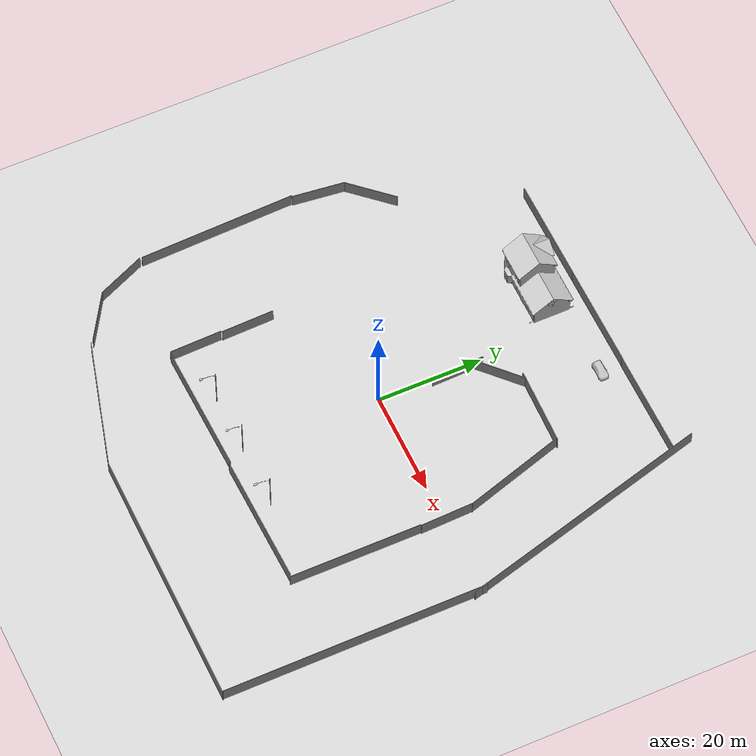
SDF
<sdf version="1.6">
 <world name="default">
  <model name="ground_plane">
   <static>1</static>
   <link name="link">
    <collision name="collision">
     <geometry><plane><normal>0 0 1</normal><size>100 100</size></plane></geometry>
     <surface>
      <contact><collide_bitmask>65535</collide_bitmask></contact>
      <friction><ode><mu>100</mu><mu2>50</mu2></ode></friction>
     </surface>
    </collision>
    <visual name="visual">
     <cast_shadows>0</cast_shadows>
     <geometry><plane><normal>0 0 1</normal><size>100 100</size></plane></geometry>
     <material>
      <script><uri>file://media/materials/scripts/gazebo.material</uri><name>Gazebo/Grey</name></script>
     </material>
    </visual>
   </link>
  </model>
  <model name="House_3">
   <link name="link">
    <inertial>
     <inertia><ixx>1</ixx><ixy>0</ixy><ixz>0</ixz><iyy>1</iyy><iyz>0</iyz><izz>1</izz></inertia>
     <mass>1</mass>
    </inertial>
    <visual name="visual">
     <geometry><mesh><uri>model://house_3/meshes/house_3.dae</uri><scale>1.5 1.5 1.5</scale></mesh></geometry>
     <material>
      <script>
       <uri>model://house_3/materials/scripts</uri>
       <uri>model://house_3/materials/textures</uri>
       <uri>model://house_1/materials/textures</uri>
       <name>House_3/Diffuse</name>
      </script>
      <shader type="normal_map_tangent_space">
       <normal_map>model://house_1/materials/textures/House_1_Normal.png</normal_map>
      </shader>
     </material>
    </visual>
    <collision name="collision">
     <geometry>
      <mesh><uri>/home/kpit/.gazebo/models/house_3/meshes/house_3.dae</uri><scale>1.5 1.5 1.5</scale></mesh>
     </geometry>
     <surface>
      <friction>
       <ode><mu>1</mu><mu2>1</mu2><fdir1>0 0 0</fdir1><slip1>0</slip1><slip2>0</slip2></ode>
       <torsional>
        <coefficient>1</coefficient>
        <patch_radius>0</patch_radius>
        <surface_radius>0</surface_radius>
        <use_patch_radius>1</use_patch_radius>
        <ode><slip>0</slip></ode>
       </torsional>
      </friction>
      <bounce><restitution_coefficient>0</restitution_coefficient><threshold>1e+06</threshold></bounce>
      <contact>
       <collide_without_contact>0</collide_without_contact>
       <collide_without_contact_bitmask>1</collide_without_contact_bitmask>
       <collide_bitmask>1</collide_bitmask>
       <ode>
        <soft_cfm>0</soft_cfm>
        <soft_erp>0.2</soft_erp>
        <kp>1e+13</kp>
        <kd>1</kd>
        <max_vel>0.01</max_vel>
        <min_depth>0</min_depth>
       </ode>
       <bullet>
        <split_impulse>1</split_impulse>
        <split_impulse_penetration_threshold>-0.01</split_impulse_penetration_threshold>
        <soft_cfm>0</soft_cfm>
        <soft_erp>0.2</soft_erp>
        <kp>1e+13</kp>
        <kd>1</kd>
       </bullet>
      </contact>
     </surface>
    </collision>
   </link>
   <link name="link_0">
    <inertial>
     <mass>1</mass>
     <inertia>
      <ixx>0.166667</ixx>
      <ixy>0</ixy>
      <ixz>0</ixz>
      <iyy>0.166667</iyy>
      <iyz>0</iyz>
      <izz>0.166667</izz>
     </inertia>
    </inertial>
    <pose>27.4713 -84.731 1.24847 0 -0 0</pose>
    <visual name="visual">
     <geometry><box><size>50 0.1 3</size></box></geometry>
     <material>
      <lighting>1</lighting>
      <script><uri>file://media/materials/scripts/gazebo.material</uri><name>Gazebo/Grey</name></script>
      <shader type="vertex"><normal_map>__default__</normal_map></shader>
      <ambient>0.3 0.3 0.3 1</ambient>
      <diffuse>0.7 0.7 0.7 1</diffuse>
      <specular>0.01 0.01 0.01 1</specular>
      <emissive>0 0 0 1</emissive>
     </material>
    </visual>
    <collision name="collision">
     <geometry><box><size>50 0.1 3</size></box></geometry>
     <surface>
      <friction>
       <ode><mu>1</mu><mu2>1</mu2><fdir1>0 0 0</fdir1><slip1>0</slip1><slip2>0</slip2></ode>
       <torsional>
        <coefficient>1</coefficient>
        <patch_radius>0</patch_radius>
        <surface_radius>0</surface_radius>
        <use_patch_radius>1</use_patch_radius>
        <ode><slip>0</slip></ode>
       </torsional>
      </friction>
      <bounce><restitution_coefficient>0</restitution_coefficient><threshold>1e+06</threshold></bounce>
      <contact>
       <collide_without_contact>0</collide_without_contact>
       <collide_without_contact_bitmask>1</collide_without_contact_bitmask>
       <collide_bitmask>1</collide_bitmask>
       <ode>
        <soft_cfm>0</soft_cfm>
        <soft_erp>0.2</soft_erp>
        <kp>1e+13</kp>
        <kd>1</kd>
        <max_vel>0.01</max_vel>
        <min_depth>0</min_depth>
       </ode>
       <bullet>
        <split_impulse>1</split_impulse>
        <split_impulse_penetration_threshold>-0.01</split_impulse_penetration_threshold>
        <soft_cfm>0</soft_cfm>
        <soft_erp>0.2</soft_erp>
        <kp>1e+13</kp>
        <kd>1</kd>
       </bullet>
      </contact>
     </surface>
    </collision>
   </link>
   <link name="link_0_clone">
    <inertial>
     <mass>1</mass>
     <inertia>
      <ixx>0.166667</ixx>
      <ixy>0</ixy>
      <ixz>0</ixz>
      <iyy>0.166667</iyy>
      <iyz>0</iyz>
      <izz>0.166667</izz>
     </inertia>
    </inertial>
    <pose>52.241 -59.7234 1.24847 0 -0 1.57244</pose>
    <visual name="visual">
     <geometry><box><size>50 0.1 3</size></box></geometry>
     <material>
      <lighting>1</lighting>
      <script><uri>file://media/materials/scripts/gazebo.material</uri><name>Gazebo/Grey</name></script>
      <shader type="vertex"><normal_map>__default__</normal_map></shader>
      <ambient>0.3 0.3 0.3 1</ambient>
      <diffuse>0.7 0.7 0.7 1</diffuse>
      <specular>0.01 0.01 0.01 1</specular>
      <emissive>0 0 0 1</emissive>
     </material>
    </visual>
    <collision name="collision">
     <geometry><box><size>50 0.1 3</size></box></geometry>
     <surface>
      <friction>
       <ode><mu>1</mu><mu2>1</mu2><fdir1>0 0 0</fdir1><slip1>0</slip1><slip2>0</slip2></ode>
       <torsional>
        <coefficient>1</coefficient>
        <patch_radius>0</patch_radius>
        <surface_radius>0</surface_radius>
        <use_patch_radius>1</use_patch_radius>
        <ode><slip>0</slip></ode>
       </torsional>
      </friction>
      <bounce><restitution_coefficient>0</restitution_coefficient><threshold>1e+06</threshold></bounce>
      <contact>
       <collide_without_contact>0</collide_without_contact>
       <collide_without_contact_bitmask>1</collide_without_contact_bitmask>
       <collide_bitmask>1</collide_bitmask>
       <ode>
        <soft_cfm>0</soft_cfm>
        <soft_erp>0.2</soft_erp>
        <kp>1e+13</kp>
        <kd>1</kd>
        <max_vel>0.01</max_vel>
        <min_depth>0</min_depth>
       </ode>
       <bullet>
        <split_impulse>1</split_impulse>
        <split_impulse_penetration_threshold>-0.01</split_impulse_penetration_threshold>
        <soft_cfm>0</soft_cfm>
        <soft_erp>0.2</soft_erp>
        <kp>1e+13</kp>
        <kd>1</kd>
       </bullet>
      </contact>
     </surface>
    </collision>
   </link>
   <link name="link_0_clone_clone">
    <inertial>
     <mass>1</mass>
     <inertia>
      <ixx>0.166667</ixx>
      <ixy>0</ixy>
      <ixz>0</ixz>
      <iyy>0.166667</iyy>
      <iyz>0</iyz>
      <izz>0.166667</izz>
     </inertia>
    </inertial>
    <pose>46.1337 -13.1709 1.24847 0 -0 1.83448</pose>
    <visual name="visual">
     <geometry><box><size>50 0.1 3</size></box></geometry>
     <material>
      <lighting>1</lighting>
      <script><uri>file://media/materials/scripts/gazebo.material</uri><name>Gazebo/Grey</name></script>
      <shader type="vertex"><normal_map>__default__</normal_map></shader>
      <ambient>0.3 0.3 0.3 1</ambient>
      <diffuse>0.7 0.7 0.7 1</diffuse>
      <specular>0.01 0.01 0.01 1</specular>
      <emissive>0 0 0 1</emissive>
     </material>
    </visual>
    <collision name="collision">
     <geometry><box><size>50 0.1 3</size></box></geometry>
     <surface>
      <friction>
       <ode><mu>1</mu><mu2>1</mu2><fdir1>0 0 0</fdir1><slip1>0</slip1><slip2>0</slip2></ode>
       <torsional>
        <coefficient>1</coefficient>
        <patch_radius>0</patch_radius>
        <surface_radius>0</surface_radius>
        <use_patch_radius>1</use_patch_radius>
        <ode><slip>0</slip></ode>
       </torsional>
      </friction>
      <bounce><restitution_coefficient>0</restitution_coefficient><threshold>1e+06</threshold></bounce>
      <contact>
       <collide_without_contact>0</collide_without_contact>
       <collide_without_contact_bitmask>1</collide_without_contact_bitmask>
       <collide_bitmask>1</collide_bitmask>
       <ode>
        <soft_cfm>0</soft_cfm>
        <soft_erp>0.2</soft_erp>
        <kp>1e+13</kp>
        <kd>1</kd>
        <max_vel>0.01</max_vel>
        <min_depth>0</min_depth>
       </ode>
       <bullet>
        <split_impulse>1</split_impulse>
        <split_impulse_penetration_threshold>-0.01</split_impulse_penetration_threshold>
        <soft_cfm>0</soft_cfm>
        <soft_erp>0.2</soft_erp>
        <kp>1e+13</kp>
        <kd>1</kd>
       </bullet>
      </contact>
     </surface>
    </collision>
   </link>
   <link name="link_0_clone_clone_clone">
    <inertial>
     <mass>1</mass>
     <inertia>
      <ixx>0.166667</ixx>
      <ixy>0</ixy>
      <ixz>0</ixz>
      <iyy>0.166667</iyy>
      <iyz>0</iyz>
      <izz>0.166667</izz>
     </inertia>
    </inertial>
    <pose>33.5876 -20.7243 1.24847 0 -0 1.87008</pose>
    <visual name="visual">
     <geometry><box><size>20 0.1 3</size></box></geometry>
     <material>
      <lighting>1</lighting>
      <script><uri>file://media/materials/scripts/gazebo.material</uri><name>Gazebo/Grey</name></script>
      <shader type="vertex"><normal_map>__default__</normal_map></shader>
      <ambient>0.3 0.3 0.3 1</ambient>
      <diffuse>0.7 0.7 0.7 1</diffuse>
      <specular>0.01 0.01 0.01 1</specular>
      <emissive>0 0 0 1</emissive>
     </material>
    </visual>
    <collision name="collision">
     <geometry><box><size>20 0.1 3</size></box></geometry>
     <surface>
      <friction>
       <ode><mu>1</mu><mu2>1</mu2><fdir1>0 0 0</fdir1><slip1>0</slip1><slip2>0</slip2></ode>
       <torsional>
        <coefficient>1</coefficient>
        <patch_radius>0</patch_radius>
        <surface_radius>0</surface_radius>
        <use_patch_radius>1</use_patch_radius>
        <ode><slip>0</slip></ode>
       </torsional>
      </friction>
      <bounce><restitution_coefficient>0</restitution_coefficient><threshold>1e+06</threshold></bounce>
      <contact>
       <collide_without_contact>0</collide_without_contact>
       <collide_without_contact_bitmask>1</collide_without_contact_bitmask>
       <collide_bitmask>1</collide_bitmask>
       <ode>
        <soft_cfm>0</soft_cfm>
        <soft_erp>0.2</soft_erp>
        <kp>1e+13</kp>
        <kd>1</kd>
        <max_vel>0.01</max_vel>
        <min_depth>0</min_depth>
       </ode>
       <bullet>
        <split_impulse>1</split_impulse>
        <split_impulse_penetration_threshold>-0.01</split_impulse_penetration_threshold>
        <soft_cfm>0</soft_cfm>
        <soft_erp>0.2</soft_erp>
        <kp>1e+13</kp>
        <kd>1</kd>
       </bullet>
      </contact>
     </surface>
    </collision>
   </link>
   <link name="link_0_clone_clone_clone_clone">
    <inertial>
     <mass>1</mass>
     <inertia>
      <ixx>0.166667</ixx>
      <ixy>0</ixy>
      <ixz>0</ixz>
      <iyy>0.166667</iyy>
      <iyz>0</iyz>
      <izz>0.166667</izz>
     </inertia>
    </inertial>
    <pose>36.6159 -52.6479 1.24847 0 -0 1.57014</pose>
    <visual name="visual">
     <geometry><box><size>25 0.1 3</size></box></geometry>
     <material>
      <lighting>1</lighting>
      <script><uri>file://media/materials/scripts/gazebo.material</uri><name>Gazebo/Grey</name></script>
      <shader type="vertex"><normal_map>__default__</normal_map></shader>
      <ambient>0.3 0.3 0.3 1</ambient>
      <diffuse>0.7 0.7 0.7 1</diffuse>
      <specular>0.01 0.01 0.01 1</specular>
      <emissive>0 0 0 1</emissive>
     </material>
    </visual>
    <collision name="collision">
     <geometry><box><size>25 0.1 3</size></box></geometry>
     <surface>
      <friction>
       <ode><mu>1</mu><mu2>1</mu2><fdir1>0 0 0</fdir1><slip1>0</slip1><slip2>0</slip2></ode>
       <torsional>
        <coefficient>1</coefficient>
        <patch_radius>0</patch_radius>
        <surface_radius>0</surface_radius>
        <use_patch_radius>1</use_patch_radius>
        <ode><slip>0</slip></ode>
       </torsional>
      </friction>
      <bounce><restitution_coefficient>0</restitution_coefficient><threshold>1e+06</threshold></bounce>
      <contact>
       <collide_without_contact>0</collide_without_contact>
       <collide_without_contact_bitmask>1</collide_without_contact_bitmask>
       <collide_bitmask>1</collide_bitmask>
       <ode>
        <soft_cfm>0</soft_cfm>
        <soft_erp>0.2</soft_erp>
        <kp>1e+13</kp>
        <kd>1</kd>
        <max_vel>0.01</max_vel>
        <min_depth>0</min_depth>
       </ode>
       <bullet>
        <split_impulse>1</split_impulse>
        <split_impulse_penetration_threshold>-0.01</split_impulse_penetration_threshold>
        <soft_cfm>0</soft_cfm>
        <soft_erp>0.2</soft_erp>
        <kp>1e+13</kp>
        <kd>1</kd>
       </bullet>
      </contact>
     </surface>
    </collision>
   </link>
   <link name="link_0_clone_clone_clone_clone_0_clone">
    <inertial>
     <mass>1</mass>
     <inertia>
      <ixx>0.166667</ixx>
      <ixy>0</ixy>
      <ixz>0</ixz>
      <iyy>0.166667</iyy>
      <iyz>0</iyz>
      <izz>0.166667</izz>
     </inertia>
    </inertial>
    <pose>30.5119 6.6857 1.24847 -0 -0 -3.13692</pose>
    <visual name="visual">
     <geometry><box><size>20 0.1 3</size></box></geometry>
     <material>
      <lighting>1</lighting>
      <script><uri>file://media/materials/scripts/gazebo.material</uri><name>Gazebo/Grey</name></script>
      <shader type="vertex"><normal_map>__default__</normal_map></shader>
      <ambient>0.3 0.3 0.3 1</ambient>
      <diffuse>0.7 0.7 0.7 1</diffuse>
      <specular>0.01 0.01 0.01 1</specular>
      <emissive>0 0 0 1</emissive>
     </material>
    </visual>
    <collision name="collision">
     <geometry><box><size>20 0.1 3</size></box></geometry>
     <surface>
      <friction>
       <ode><mu>1</mu><mu2>1</mu2><fdir1>0 0 0</fdir1><slip1>0</slip1><slip2>0</slip2></ode>
       <torsional>
        <coefficient>1</coefficient>
        <patch_radius>0</patch_radius>
        <surface_radius>0</surface_radius>
        <use_patch_radius>1</use_patch_radius>
        <ode><slip>0</slip></ode>
       </torsional>
      </friction>
      <bounce><restitution_coefficient>0</restitution_coefficient><threshold>1e+06</threshold></bounce>
      <contact>
       <collide_without_contact>0</collide_without_contact>
       <collide_without_contact_bitmask>1</collide_without_contact_bitmask>
       <collide_bitmask>1</collide_bitmask>
       <ode>
        <soft_cfm>0</soft_cfm>
        <soft_erp>0.2</soft_erp>
        <kp>1e+13</kp>
        <kd>1</kd>
        <max_vel>0.01</max_vel>
        <min_depth>0</min_depth>
       </ode>
       <bullet>
        <split_impulse>1</split_impulse>
        <split_impulse_penetration_threshold>-0.01</split_impulse_penetration_threshold>
        <soft_cfm>0</soft_cfm>
        <soft_erp>0.2</soft_erp>
        <kp>1e+13</kp>
        <kd>1</kd>
       </bullet>
      </contact>
     </surface>
    </collision>
   </link>
   <link name="link_0_clone_clone_clone_clone_0_clone_0">
    <inertial>
     <mass>1</mass>
     <inertia>
      <ixx>0.166667</ixx>
      <ixy>0</ixy>
      <ixz>0</ixz>
      <iyy>0.166667</iyy>
      <iyz>0</iyz>
      <izz>0.166667</izz>
     </inertia>
    </inertial>
    <pose>10.5116 6.64563 1.24847 -0 -0 -3.13692</pose>
    <visual name="visual">
     <geometry><box><size>20 0.1 3</size></box></geometry>
     <material>
      <lighting>1</lighting>
      <script><uri>file://media/materials/scripts/gazebo.material</uri><name>Gazebo/Grey</name></script>
      <shader type="vertex"><normal_map>__default__</normal_map></shader>
      <ambient>0.3 0.3 0.3 1</ambient>
      <diffuse>0.7 0.7 0.7 1</diffuse>
      <specular>0.01 0.01 0.01 1</specular>
      <emissive>0 0 0 1</emissive>
     </material>
    </visual>
    <collision name="collision">
     <geometry><box><size>20 0.1 3</size></box></geometry>
     <surface>
      <friction>
       <ode><mu>1</mu><mu2>1</mu2><fdir1>0 0 0</fdir1><slip1>0</slip1><slip2>0</slip2></ode>
       <torsional>
        <coefficient>1</coefficient>
        <patch_radius>0</patch_radius>
        <surface_radius>0</surface_radius>
        <use_patch_radius>1</use_patch_radius>
        <ode><slip>0</slip></ode>
       </torsional>
      </friction>
      <bounce><restitution_coefficient>0</restitution_coefficient><threshold>1e+06</threshold></bounce>
      <contact>
       <collide_without_contact>0</collide_without_contact>
       <collide_without_contact_bitmask>1</collide_without_contact_bitmask>
       <collide_bitmask>1</collide_bitmask>
       <ode>
        <soft_cfm>0</soft_cfm>
        <soft_erp>0.2</soft_erp>
        <kp>1e+13</kp>
        <kd>1</kd>
        <max_vel>0.01</max_vel>
        <min_depth>0</min_depth>
       </ode>
       <bullet>
        <split_impulse>1</split_impulse>
        <split_impulse_penetration_threshold>-0.01</split_impulse_penetration_threshold>
        <soft_cfm>0</soft_cfm>
        <soft_erp>0.2</soft_erp>
        <kp>1e+13</kp>
        <kd>1</kd>
       </bullet>
      </contact>
     </surface>
    </collision>
   </link>
   <link name="link_0_clone_clone_clone_clone_0_clone_1">
    <inertial>
     <mass>1</mass>
     <inertia>
      <ixx>0.166667</ixx>
      <ixy>0</ixy>
      <ixz>0</ixz>
      <iyy>0.166667</iyy>
      <iyz>0</iyz>
      <izz>0.166667</izz>
     </inertia>
    </inertial>
    <pose>-9.52792 6.55994 1.24847 -0 -0 -3.13692</pose>
    <visual name="visual">
     <geometry><box><size>20 0.1 3</size></box></geometry>
     <material>
      <lighting>1</lighting>
      <script><uri>file://media/materials/scripts/gazebo.material</uri><name>Gazebo/Grey</name></script>
      <shader type="vertex"><normal_map>__default__</normal_map></shader>
      <ambient>0.3 0.3 0.3 1</ambient>
      <diffuse>0.7 0.7 0.7 1</diffuse>
      <specular>0.01 0.01 0.01 1</specular>
      <emissive>0 0 0 1</emissive>
     </material>
    </visual>
    <collision name="collision">
     <geometry><box><size>20 0.1 3</size></box></geometry>
     <surface>
      <friction>
       <ode><mu>1</mu><mu2>1</mu2><fdir1>0 0 0</fdir1><slip1>0</slip1><slip2>0</slip2></ode>
       <torsional>
        <coefficient>1</coefficient>
        <patch_radius>0</patch_radius>
        <surface_radius>0</surface_radius>
        <use_patch_radius>1</use_patch_radius>
        <ode><slip>0</slip></ode>
       </torsional>
      </friction>
      <bounce><restitution_coefficient>0</restitution_coefficient><threshold>1e+06</threshold></bounce>
      <contact>
       <collide_without_contact>0</collide_without_contact>
       <collide_without_contact_bitmask>1</collide_without_contact_bitmask>
       <collide_bitmask>1</collide_bitmask>
       <ode>
        <soft_cfm>0</soft_cfm>
        <soft_erp>0.2</soft_erp>
        <kp>1e+13</kp>
        <kd>1</kd>
        <max_vel>0.01</max_vel>
        <min_depth>0</min_depth>
       </ode>
       <bullet>
        <split_impulse>1</split_impulse>
        <split_impulse_penetration_threshold>-0.01</split_impulse_penetration_threshold>
        <soft_cfm>0</soft_cfm>
        <soft_erp>0.2</soft_erp>
        <kp>1e+13</kp>
        <kd>1</kd>
       </bullet>
      </contact>
     </surface>
    </collision>
   </link>
   <link name="link_0_clone_clone_clone_clone_0_clone_1_clone">
    <inertial>
     <mass>1</mass>
     <inertia>
      <ixx>0.166667</ixx>
      <ixy>0</ixy>
      <ixz>0</ixz>
      <iyy>0.166667</iyy>
      <iyz>0</iyz>
      <izz>0.166667</izz>
     </inertia>
    </inertial>
    <pose>-30.8832 -18.8526 1.24847 -0 -0 -2.31387</pose>
    <visual name="visual">
     <geometry><box><size>10 0.1 3</size></box></geometry>
     <material>
      <lighting>1</lighting>
      <script><uri>file://media/materials/scripts/gazebo.material</uri><name>Gazebo/Grey</name></script>
      <shader type="vertex"><normal_map>__default__</normal_map></shader>
      <ambient>0.3 0.3 0.3 1</ambient>
      <diffuse>0.7 0.7 0.7 1</diffuse>
      <specular>0.01 0.01 0.01 1</specular>
      <emissive>0 0 0 1</emissive>
     </material>
    </visual>
    <collision name="collision">
     <geometry><box><size>10 0.1 3</size></box></geometry>
     <surface>
      <friction>
       <ode><mu>1</mu><mu2>1</mu2><fdir1>0 0 0</fdir1><slip1>0</slip1><slip2>0</slip2></ode>
       <torsional>
        <coefficient>1</coefficient>
        <patch_radius>0</patch_radius>
        <surface_radius>0</surface_radius>
        <use_patch_radius>1</use_patch_radius>
        <ode><slip>0</slip></ode>
       </torsional>
      </friction>
      <bounce><restitution_coefficient>0</restitution_coefficient><threshold>1e+06</threshold></bounce>
      <contact>
       <collide_without_contact>0</collide_without_contact>
       <collide_without_contact_bitmask>1</collide_without_contact_bitmask>
       <collide_bitmask>1</collide_bitmask>
       <ode>
        <soft_cfm>0</soft_cfm>
        <soft_erp>0.2</soft_erp>
        <kp>1e+13</kp>
        <kd>1</kd>
        <max_vel>0.01</max_vel>
        <min_depth>0</min_depth>
       </ode>
       <bullet>
        <split_impulse>1</split_impulse>
        <split_impulse_penetration_threshold>-0.01</split_impulse_penetration_threshold>
        <soft_cfm>0</soft_cfm>
        <soft_erp>0.2</soft_erp>
        <kp>1e+13</kp>
        <kd>1</kd>
       </bullet>
      </contact>
     </surface>
    </collision>
   </link>
   <link name="link_0_clone_clone_clone_clone_0_clone_1_clone_clone">
    <inertial>
     <mass>1</mass>
     <inertia>
      <ixx>0.166667</ixx>
      <ixy>0</ixy>
      <ixz>0</ixz>
      <iyy>0.166667</iyy>
      <iyz>0</iyz>
      <izz>0.166667</izz>
     </inertia>
    </inertial>
    <pose>-34.9276 -27.509 1.24847 0 -0 -1.68597</pose>
    <visual name="visual">
     <geometry><box><size>10 0.1 3</size></box></geometry>
     <material>
      <lighting>1</lighting>
      <script><uri>file://media/materials/scripts/gazebo.material</uri><name>Gazebo/Grey</name></script>
      <shader type="vertex"><normal_map>__default__</normal_map></shader>
      <ambient>0.3 0.3 0.3 1</ambient>
      <diffuse>0.7 0.7 0.7 1</diffuse>
      <specular>0.01 0.01 0.01 1</specular>
      <emissive>0 0 0 1</emissive>
     </material>
    </visual>
    <collision name="collision">
     <geometry><box><size>10 0.1 3</size></box></geometry>
     <surface>
      <friction>
       <ode><mu>1</mu><mu2>1</mu2><fdir1>0 0 0</fdir1><slip1>0</slip1><slip2>0</slip2></ode>
       <torsional>
        <coefficient>1</coefficient>
        <patch_radius>0</patch_radius>
        <surface_radius>0</surface_radius>
        <use_patch_radius>1</use_patch_radius>
        <ode><slip>0</slip></ode>
       </torsional>
      </friction>
      <bounce><restitution_coefficient>0</restitution_coefficient><threshold>1e+06</threshold></bounce>
      <contact>
       <collide_without_contact>0</collide_without_contact>
       <collide_without_contact_bitmask>1</collide_without_contact_bitmask>
       <collide_bitmask>1</collide_bitmask>
       <ode>
        <soft_cfm>0</soft_cfm>
        <soft_erp>0.2</soft_erp>
        <kp>1e+13</kp>
        <kd>1</kd>
        <max_vel>0.01</max_vel>
        <min_depth>0</min_depth>
       </ode>
       <bullet>
        <split_impulse>1</split_impulse>
        <split_impulse_penetration_threshold>-0.01</split_impulse_penetration_threshold>
        <soft_cfm>0</soft_cfm>
        <soft_erp>0.2</soft_erp>
        <kp>1e+13</kp>
        <kd>1</kd>
       </bullet>
      </contact>
     </surface>
    </collision>
   </link>
   <link name="link_0_clone_clone_clone_clone_0_clone_1_clone_clone_clone">
    <inertial>
     <mass>1</mass>
     <inertia>
      <ixx>0.166667</ixx>
      <ixy>0</ixy>
      <ixz>0</ixz>
      <iyy>0.166667</iyy>
      <iyz>0</iyz>
      <izz>0.166667</izz>
     </inertia>
    </inertial>
    <pose>-35.2166 -47.4695 1.24847 0 0 -1.53676</pose>
    <visual name="visual">
     <geometry><box><size>30 0.1 3</size></box></geometry>
     <material>
      <lighting>1</lighting>
      <script><uri>file://media/materials/scripts/gazebo.material</uri><name>Gazebo/Grey</name></script>
      <shader type="vertex"><normal_map>__default__</normal_map></shader>
      <ambient>0.3 0.3 0.3 1</ambient>
      <diffuse>0.7 0.7 0.7 1</diffuse>
      <specular>0.01 0.01 0.01 1</specular>
      <emissive>0 0 0 1</emissive>
     </material>
    </visual>
    <collision name="collision">
     <geometry><box><size>30 0.1 3</size></box></geometry>
     <surface>
      <friction>
       <ode><mu>1</mu><mu2>1</mu2><fdir1>0 0 0</fdir1><slip1>0</slip1><slip2>0</slip2></ode>
       <torsional>
        <coefficient>1</coefficient>
        <patch_radius>0</patch_radius>
        <surface_radius>0</surface_radius>
        <use_patch_radius>1</use_patch_radius>
        <ode><slip>0</slip></ode>
       </torsional>
      </friction>
      <bounce><restitution_coefficient>0</restitution_coefficient><threshold>1e+06</threshold></bounce>
      <contact>
       <collide_without_contact>0</collide_without_contact>
       <collide_without_contact_bitmask>1</collide_without_contact_bitmask>
       <collide_bitmask>1</collide_bitmask>
       <ode>
        <soft_cfm>0</soft_cfm>
        <soft_erp>0.2</soft_erp>
        <kp>1e+13</kp>
        <kd>1</kd>
        <max_vel>0.01</max_vel>
        <min_depth>0</min_depth>
       </ode>
       <bullet>
        <split_impulse>1</split_impulse>
        <split_impulse_penetration_threshold>-0.01</split_impulse_penetration_threshold>
        <soft_cfm>0</soft_cfm>
        <soft_erp>0.2</soft_erp>
        <kp>1e+13</kp>
        <kd>1</kd>
       </bullet>
      </contact>
     </surface>
    </collision>
   </link>
   <link name="link_0_clone_clone_clone_clone_0_clone_1_clone_clone_clone_0">
    <inertial>
     <mass>1</mass>
     <inertia>
      <ixx>0.166667</ixx>
      <ixy>0</ixy>
      <ixz>0</ixz>
      <iyy>0.166667</iyy>
      <iyz>0</iyz>
      <izz>0.166667</izz>
     </inertia>
    </inertial>
    <pose>-32.7782 -67.3476 1.24847 0 -0 -1.15434</pose>
    <visual name="visual">
     <geometry><box><size>10 0.1 3</size></box></geometry>
     <material>
      <lighting>1</lighting>
      <script><uri>file://media/materials/scripts/gazebo.material</uri><name>Gazebo/Grey</name></script>
      <shader type="vertex"><normal_map>__default__</normal_map></shader>
      <ambient>0.3 0.3 0.3 1</ambient>
      <diffuse>0.7 0.7 0.7 1</diffuse>
      <specular>0.01 0.01 0.01 1</specular>
      <emissive>0 0 0 1</emissive>
     </material>
    </visual>
    <collision name="collision">
     <geometry><box><size>10 0.1 3</size></box></geometry>
     <surface>
      <friction>
       <ode><mu>1</mu><mu2>1</mu2><fdir1>0 0 0</fdir1><slip1>0</slip1><slip2>0</slip2></ode>
       <torsional>
        <coefficient>1</coefficient>
        <patch_radius>0</patch_radius>
        <surface_radius>0</surface_radius>
        <use_patch_radius>1</use_patch_radius>
        <ode><slip>0</slip></ode>
       </torsional>
      </friction>
      <bounce><restitution_coefficient>0</restitution_coefficient><threshold>1e+06</threshold></bounce>
      <contact>
       <collide_without_contact>0</collide_without_contact>
       <collide_without_contact_bitmask>1</collide_without_contact_bitmask>
       <collide_bitmask>1</collide_bitmask>
       <ode>
        <soft_cfm>0</soft_cfm>
        <soft_erp>0.2</soft_erp>
        <kp>1e+13</kp>
        <kd>1</kd>
        <max_vel>0.01</max_vel>
        <min_depth>0</min_depth>
       </ode>
       <bullet>
        <split_impulse>1</split_impulse>
        <split_impulse_penetration_threshold>-0.01</split_impulse_penetration_threshold>
        <soft_cfm>0</soft_cfm>
        <soft_erp>0.2</soft_erp>
        <kp>1e+13</kp>
        <kd>1</kd>
       </bullet>
      </contact>
     </surface>
    </collision>
   </link>
   <link name="link_0_clone_clone_clone_clone_0_clone_1_clone_clone_clone_0_clone">
    <inertial>
     <mass>1</mass>
     <inertia>
      <ixx>0.166667</ixx>
      <ixy>0</ixy>
      <ixz>0</ixz>
      <iyy>0.166667</iyy>
      <iyz>0</iyz>
      <izz>0.166667</izz>
     </inertia>
    </inertial>
    <pose>-26.5795 -74.5086 1.24847 0 0 -0.56512</pose>
    <visual name="visual">
     <geometry><box><size>10 0.1 3</size></box></geometry>
     <material>
      <lighting>1</lighting>
      <script><uri>file://media/materials/scripts/gazebo.material</uri><name>Gazebo/Grey</name></script>
      <shader type="vertex"><normal_map>__default__</normal_map></shader>
      <ambient>0.3 0.3 0.3 1</ambient>
      <diffuse>0.7 0.7 0.7 1</diffuse>
      <specular>0.01 0.01 0.01 1</specular>
      <emissive>0 0 0 1</emissive>
     </material>
    </visual>
    <collision name="collision">
     <geometry><box><size>10 0.1 3</size></box></geometry>
     <surface>
      <friction>
       <ode><mu>1</mu><mu2>1</mu2><fdir1>0 0 0</fdir1><slip1>0</slip1><slip2>0</slip2></ode>
       <torsional>
        <coefficient>1</coefficient>
        <patch_radius>0</patch_radius>
        <surface_radius>0</surface_radius>
        <use_patch_radius>1</use_patch_radius>
        <ode><slip>0</slip></ode>
       </torsional>
      </friction>
      <bounce><restitution_coefficient>0</restitution_coefficient><threshold>1e+06</threshold></bounce>
      <contact>
       <collide_without_contact>0</collide_without_contact>
       <collide_without_contact_bitmask>1</collide_without_contact_bitmask>
       <collide_bitmask>1</collide_bitmask>
       <ode>
        <soft_cfm>0</soft_cfm>
        <soft_erp>0.2</soft_erp>
        <kp>1e+13</kp>
        <kd>1</kd>
        <max_vel>0.01</max_vel>
        <min_depth>0</min_depth>
       </ode>
       <bullet>
        <split_impulse>1</split_impulse>
        <split_impulse_penetration_threshold>-0.01</split_impulse_penetration_threshold>
        <soft_cfm>0</soft_cfm>
        <soft_erp>0.2</soft_erp>
        <kp>1e+13</kp>
        <kd>1</kd>
       </bullet>
      </contact>
     </surface>
    </collision>
   </link>
   <link name="link_0_clone_clone_clone_clone_0_clone_1_clone_clone_clone_0_clone_clone">
    <inertial>
     <mass>1</mass>
     <inertia>
      <ixx>0.166667</ixx>
      <ixy>0</ixy>
      <ixz>0</ixz>
      <iyy>0.166667</iyy>
      <iyz>0</iyz>
      <izz>0.166667</izz>
     </inertia>
    </inertial>
    <pose>36.6261 -35.2011 1.24847 0 -0 1.60144</pose>
    <visual name="visual">
     <geometry><box><size>10 0.1 3</size></box></geometry>
     <material>
      <lighting>1</lighting>
      <script><uri>file://media/materials/scripts/gazebo.material</uri><name>Gazebo/Grey</name></script>
      <shader type="vertex"><normal_map>__default__</normal_map></shader>
      <ambient>0.3 0.3 0.3 1</ambient>
      <diffuse>0.7 0.7 0.7 1</diffuse>
      <specular>0.01 0.01 0.01 1</specular>
      <emissive>0 0 0 1</emissive>
     </material>
    </visual>
    <collision name="collision">
     <geometry><box><size>10 0.1 3</size></box></geometry>
     <surface>
      <friction>
       <ode><mu>1</mu><mu2>1</mu2><fdir1>0 0 0</fdir1><slip1>0</slip1><slip2>0</slip2></ode>
       <torsional>
        <coefficient>1</coefficient>
        <patch_radius>0</patch_radius>
        <surface_radius>0</surface_radius>
        <use_patch_radius>1</use_patch_radius>
        <ode><slip>0</slip></ode>
       </torsional>
      </friction>
      <bounce><restitution_coefficient>0</restitution_coefficient><threshold>1e+06</threshold></bounce>
      <contact>
       <collide_without_contact>0</collide_without_contact>
       <collide_without_contact_bitmask>1</collide_without_contact_bitmask>
       <collide_bitmask>1</collide_bitmask>
       <ode>
        <soft_cfm>0</soft_cfm>
        <soft_erp>0.2</soft_erp>
        <kp>1e+13</kp>
        <kd>1</kd>
        <max_vel>0.01</max_vel>
        <min_depth>0</min_depth>
       </ode>
       <bullet>
        <split_impulse>1</split_impulse>
        <split_impulse_penetration_threshold>-0.01</split_impulse_penetration_threshold>
        <soft_cfm>0</soft_cfm>
        <soft_erp>0.2</soft_erp>
        <kp>1e+13</kp>
        <kd>1</kd>
       </bullet>
      </contact>
     </surface>
    </collision>
   </link>
   <link name="link_0_clone_clone_clone_clone_0_clone_1_clone_clone_clone_0_clone_clone_0">
    <inertial>
     <mass>1</mass>
     <inertia>
      <ixx>0.166667</ixx>
      <ixy>0</ixy>
      <ixz>0</ixz>
      <iyy>0.166667</iyy>
      <iyz>0</iyz>
      <izz>0.166667</izz>
     </inertia>
    </inertial>
    <pose>-14.2688 -60.7697 1.24847 0 -0 -1.54437</pose>
    <visual name="visual">
     <geometry><box><size>10 0.1 3</size></box></geometry>
     <material>
      <lighting>1</lighting>
      <script><uri>file://media/materials/scripts/gazebo.material</uri><name>Gazebo/Grey</name></script>
      <shader type="vertex"><normal_map>__default__</normal_map></shader>
      <ambient>0.3 0.3 0.3 1</ambient>
      <diffuse>0.7 0.7 0.7 1</diffuse>
      <specular>0.01 0.01 0.01 1</specular>
      <emissive>0 0 0 1</emissive>
     </material>
    </visual>
    <collision name="collision">
     <geometry><box><size>10 0.1 3</size></box></geometry>
     <surface>
      <friction>
       <ode><mu>1</mu><mu2>1</mu2><fdir1>0 0 0</fdir1><slip1>0</slip1><slip2>0</slip2></ode>
       <torsional>
        <coefficient>1</coefficient>
        <patch_radius>0</patch_radius>
        <surface_radius>0</surface_radius>
        <use_patch_radius>1</use_patch_radius>
        <ode><slip>0</slip></ode>
       </torsional>
      </friction>
      <bounce><restitution_coefficient>0</restitution_coefficient><threshold>1e+06</threshold></bounce>
      <contact>
       <collide_without_contact>0</collide_without_contact>
       <collide_without_contact_bitmask>1</collide_without_contact_bitmask>
       <collide_bitmask>1</collide_bitmask>
       <ode>
        <soft_cfm>0</soft_cfm>
        <soft_erp>0.2</soft_erp>
        <kp>1e+13</kp>
        <kd>1</kd>
        <max_vel>0.01</max_vel>
        <min_depth>0</min_depth>
       </ode>
       <bullet>
        <split_impulse>1</split_impulse>
        <split_impulse_penetration_threshold>-0.01</split_impulse_penetration_threshold>
        <soft_cfm>0</soft_cfm>
        <soft_erp>0.2</soft_erp>
        <kp>1e+13</kp>
        <kd>1</kd>
       </bullet>
      </contact>
     </surface>
    </collision>
   </link>
   <link name="link_0_clone_clone_clone_clone_0_clone_1_clone_clone_clone_0_clone_clone_0_clone">
    <inertial>
     <mass>1</mass>
     <inertia>
      <ixx>0.166667</ixx>
      <ixy>0</ixy>
      <ixz>0</ixz>
      <iyy>0.166667</iyy>
      <iyz>0</iyz>
      <izz>0.166667</izz>
     </inertia>
    </inertial>
    <pose>-14.3475 -50.6175 1.24847 0 -0 -1.54437</pose>
    <visual name="visual">
     <geometry><box><size>10 0.1 3</size></box></geometry>
     <material>
      <lighting>1</lighting>
      <script><uri>file://media/materials/scripts/gazebo.material</uri><name>Gazebo/Grey</name></script>
      <shader type="vertex"><normal_map>__default__</normal_map></shader>
      <ambient>0.3 0.3 0.3 1</ambient>
      <diffuse>0.7 0.7 0.7 1</diffuse>
      <specular>0.01 0.01 0.01 1</specular>
      <emissive>0 0 0 1</emissive>
     </material>
    </visual>
    <collision name="collision">
     <geometry><box><size>10 0.1 3</size></box></geometry>
     <surface>
      <friction>
       <ode><mu>1</mu><mu2>1</mu2><fdir1>0 0 0</fdir1><slip1>0</slip1><slip2>0</slip2></ode>
       <torsional>
        <coefficient>1</coefficient>
        <patch_radius>0</patch_radius>
        <surface_radius>0</surface_radius>
        <use_patch_radius>1</use_patch_radius>
        <ode><slip>0</slip></ode>
       </torsional>
      </friction>
      <bounce><restitution_coefficient>0</restitution_coefficient><threshold>1e+06</threshold></bounce>
      <contact>
       <collide_without_contact>0</collide_without_contact>
       <collide_without_contact_bitmask>1</collide_without_contact_bitmask>
       <collide_bitmask>1</collide_bitmask>
       <ode>
        <soft_cfm>0</soft_cfm>
        <soft_erp>0.2</soft_erp>
        <kp>1e+13</kp>
        <kd>1</kd>
        <max_vel>0.01</max_vel>
        <min_depth>0</min_depth>
       </ode>
       <bullet>
        <split_impulse>1</split_impulse>
        <split_impulse_penetration_threshold>-0.01</split_impulse_penetration_threshold>
        <soft_cfm>0</soft_cfm>
        <soft_erp>0.2</soft_erp>
        <kp>1e+13</kp>
        <kd>1</kd>
       </bullet>
      </contact>
     </surface>
    </collision>
   </link>
   <link name="link_0_clone_clone_clone_clone_0_clone_1_clone_clone_clone_0_clone_clone_0_clone_0">
    <inertial>
     <mass>1</mass>
     <inertia>
      <ixx>0.166667</ixx>
      <ixy>0</ixy>
      <ixz>0</ixz>
      <iyy>0.166667</iyy>
      <iyz>0</iyz>
      <izz>0.166667</izz>
     </inertia>
    </inertial>
    <pose>10.0641 -20.6534 1.24847 0 -0 -1.54437</pose>
    <visual name="visual">
     <geometry><box><size>10 0.1 3</size></box></geometry>
     <material>
      <lighting>1</lighting>
      <script><uri>file://media/materials/scripts/gazebo.material</uri><name>Gazebo/Grey</name></script>
      <shader type="vertex"><normal_map>__default__</normal_map></shader>
      <ambient>0.3 0.3 0.3 1</ambient>
      <diffuse>0.7 0.7 0.7 1</diffuse>
      <specular>0.01 0.01 0.01 1</specular>
      <emissive>0 0 0 1</emissive>
     </material>
    </visual>
    <collision name="collision">
     <geometry><box><size>10 0.1 3</size></box></geometry>
     <surface>
      <friction>
       <ode><mu>1</mu><mu2>1</mu2><fdir1>0 0 0</fdir1><slip1>0</slip1><slip2>0</slip2></ode>
       <torsional>
        <coefficient>1</coefficient>
        <patch_radius>0</patch_radius>
        <surface_radius>0</surface_radius>
        <use_patch_radius>1</use_patch_radius>
        <ode><slip>0</slip></ode>
       </torsional>
      </friction>
      <bounce><restitution_coefficient>0</restitution_coefficient><threshold>1e+06</threshold></bounce>
      <contact>
       <collide_without_contact>0</collide_without_contact>
       <collide_without_contact_bitmask>1</collide_without_contact_bitmask>
       <collide_bitmask>1</collide_bitmask>
       <ode>
        <soft_cfm>0</soft_cfm>
        <soft_erp>0.2</soft_erp>
        <kp>1e+13</kp>
        <kd>1</kd>
        <max_vel>0.01</max_vel>
        <min_depth>0</min_depth>
       </ode>
       <bullet>
        <split_impulse>1</split_impulse>
        <split_impulse_penetration_threshold>-0.01</split_impulse_penetration_threshold>
        <soft_cfm>0</soft_cfm>
        <soft_erp>0.2</soft_erp>
        <kp>1e+13</kp>
        <kd>1</kd>
       </bullet>
      </contact>
     </surface>
    </collision>
   </link>
   <link name="link_0_clone_clone_clone_clone_0_clone_1_clone_clone_clone_0_clone_clone_0_clone_1">
    <inertial>
     <mass>1</mass>
     <inertia>
      <ixx>0.166667</ixx>
      <ixy>0</ixy>
      <ixz>0</ixz>
      <iyy>0.166667</iyy>
      <iyz>0</iyz>
      <izz>0.166667</izz>
     </inertia>
    </inertial>
    <pose>13.3948 -14.1778 1.24847 0 0 -2.38832</pose>
    <visual name="visual">
     <geometry><box><size>10 0.1 3</size></box></geometry>
     <material>
      <lighting>1</lighting>
      <script><uri>file://media/materials/scripts/gazebo.material</uri><name>Gazebo/Grey</name></script>
      <shader type="vertex"><normal_map>__default__</normal_map></shader>
      <ambient>0.3 0.3 0.3 1</ambient>
      <diffuse>0.7 0.7 0.7 1</diffuse>
      <specular>0.01 0.01 0.01 1</specular>
      <emissive>0 0 0 1</emissive>
     </material>
    </visual>
    <collision name="collision">
     <geometry><box><size>10 0.1 3</size></box></geometry>
     <surface>
      <friction>
       <ode><mu>1</mu><mu2>1</mu2><fdir1>0 0 0</fdir1><slip1>0</slip1><slip2>0</slip2></ode>
       <torsional>
        <coefficient>1</coefficient>
        <patch_radius>0</patch_radius>
        <surface_radius>0</surface_radius>
        <use_patch_radius>1</use_patch_radius>
        <ode><slip>0</slip></ode>
       </torsional>
      </friction>
      <bounce><restitution_coefficient>0</restitution_coefficient><threshold>1e+06</threshold></bounce>
      <contact>
       <collide_without_contact>0</collide_without_contact>
       <collide_without_contact_bitmask>1</collide_without_contact_bitmask>
       <collide_bitmask>1</collide_bitmask>
       <ode>
        <soft_cfm>0</soft_cfm>
        <soft_erp>0.2</soft_erp>
        <kp>1e+13</kp>
        <kd>1</kd>
        <max_vel>0.01</max_vel>
        <min_depth>0</min_depth>
       </ode>
       <bullet>
        <split_impulse>1</split_impulse>
        <split_impulse_penetration_threshold>-0.01</split_impulse_penetration_threshold>
        <soft_cfm>0</soft_cfm>
        <soft_erp>0.2</soft_erp>
        <kp>1e+13</kp>
        <kd>1</kd>
       </bullet>
      </contact>
     </surface>
    </collision>
   </link>
   <link name="link_0_clone_clone_clone_clone_0_clone_1_clone_clone_clone_0_clone_clone_0_clone_1_clone">
    <inertial>
     <mass>1</mass>
     <inertia>
      <ixx>0.166667</ixx>
      <ixy>0</ixy>
      <ixz>0</ixz>
      <iyy>0.166667</iyy>
      <iyz>0</iyz>
      <izz>0.166667</izz>
     </inertia>
    </inertial>
    <pose>23.4752 -10.8784 1.24847 0 -0 3.11446</pose>
    <visual name="visual">
     <geometry><box><size>15 0.1 3</size></box></geometry>
     <material>
      <lighting>1</lighting>
      <script><uri>file://media/materials/scripts/gazebo.material</uri><name>Gazebo/Grey</name></script>
      <shader type="vertex"><normal_map>__default__</normal_map></shader>
      <ambient>0.3 0.3 0.3 1</ambient>
      <diffuse>0.7 0.7 0.7 1</diffuse>
      <specular>0.01 0.01 0.01 1</specular>
      <emissive>0 0 0 1</emissive>
     </material>
    </visual>
    <collision name="collision">
     <geometry><box><size>15 0.1 3</size></box></geometry>
     <surface>
      <friction>
       <ode><mu>1</mu><mu2>1</mu2><fdir1>0 0 0</fdir1><slip1>0</slip1><slip2>0</slip2></ode>
       <torsional>
        <coefficient>1</coefficient>
        <patch_radius>0</patch_radius>
        <surface_radius>0</surface_radius>
        <use_patch_radius>1</use_patch_radius>
        <ode><slip>0</slip></ode>
       </torsional>
      </friction>
      <bounce><restitution_coefficient>0</restitution_coefficient><threshold>1e+06</threshold></bounce>
      <contact>
       <collide_without_contact>0</collide_without_contact>
       <collide_without_contact_bitmask>1</collide_without_contact_bitmask>
       <collide_bitmask>1</collide_bitmask>
       <ode>
        <soft_cfm>0</soft_cfm>
        <soft_erp>0.2</soft_erp>
        <kp>1e+13</kp>
        <kd>1</kd>
        <max_vel>0.01</max_vel>
        <min_depth>0</min_depth>
       </ode>
       <bullet>
        <split_impulse>1</split_impulse>
        <split_impulse_penetration_threshold>-0.01</split_impulse_penetration_threshold>
        <soft_cfm>0</soft_cfm>
        <soft_erp>0.2</soft_erp>
        <kp>1e+13</kp>
        <kd>1</kd>
       </bullet>
      </contact>
     </surface>
    </collision>
   </link>
   <link name="link_0_clone_clone_clone_clone_clone">
    <inertial>
     <mass>1</mass>
     <inertia>
      <ixx>0.166667</ixx>
      <ixy>0</ixy>
      <ixz>0</ixz>
      <iyy>0.166667</iyy>
      <iyz>0</iyz>
      <izz>0.166667</izz>
     </inertia>
    </inertial>
    <pose>-9.84605 -81.2015 1.24847 0 -0 2.86431</pose>
    <visual name="visual">
     <geometry><box><size>25 0.1 3</size></box></geometry>
     <material>
      <lighting>1</lighting>
      <script><uri>file://media/materials/scripts/gazebo.material</uri><name>Gazebo/Grey</name></script>
      <shader type="vertex"><normal_map>__default__</normal_map></shader>
      <ambient>0.3 0.3 0.3 1</ambient>
      <diffuse>0.7 0.7 0.7 1</diffuse>
      <specular>0.01 0.01 0.01 1</specular>
      <emissive>0 0 0 1</emissive>
     </material>
    </visual>
    <collision name="collision">
     <geometry><box><size>25 0.1 3</size></box></geometry>
     <surface>
      <friction>
       <ode><mu>1</mu><mu2>1</mu2><fdir1>0 0 0</fdir1><slip1>0</slip1><slip2>0</slip2></ode>
       <torsional>
        <coefficient>1</coefficient>
        <patch_radius>0</patch_radius>
        <surface_radius>0</surface_radius>
        <use_patch_radius>1</use_patch_radius>
        <ode><slip>0</slip></ode>
       </torsional>
      </friction>
      <bounce><restitution_coefficient>0</restitution_coefficient><threshold>1e+06</threshold></bounce>
      <contact>
       <collide_without_contact>0</collide_without_contact>
       <collide_without_contact_bitmask>1</collide_without_contact_bitmask>
       <collide_bitmask>1</collide_bitmask>
       <ode>
        <soft_cfm>0</soft_cfm>
        <soft_erp>0.2</soft_erp>
        <kp>1e+13</kp>
        <kd>1</kd>
        <max_vel>0.01</max_vel>
        <min_depth>0</min_depth>
       </ode>
       <bullet>
        <split_impulse>1</split_impulse>
        <split_impulse_penetration_threshold>-0.01</split_impulse_penetration_threshold>
        <soft_cfm>0</soft_cfm>
        <soft_erp>0.2</soft_erp>
        <kp>1e+13</kp>
        <kd>1</kd>
       </bullet>
      </contact>
     </surface>
    </collision>
   </link>
   <link name="link_0_clone_clone_clone_clone_clone_0">
    <inertial>
     <mass>1</mass>
     <inertia>
      <ixx>0.166667</ixx>
      <ixy>0</ixy>
      <ixz>0</ixz>
      <iyy>0.166667</iyy>
      <iyz>0</iyz>
      <izz>0.166667</izz>
     </inertia>
    </inertial>
    <pose>23.8042 -65.1834 1.24847 0 -0 0.02535</pose>
    <visual name="visual">
     <geometry><box><size>25 0.1 3</size></box></geometry>
     <material>
      <lighting>1</lighting>
      <script><uri>file://media/materials/scripts/gazebo.material</uri><name>Gazebo/Grey</name></script>
      <shader type="vertex"><normal_map>__default__</normal_map></shader>
      <ambient>0.3 0.3 0.3 1</ambient>
      <diffuse>0.7 0.7 0.7 1</diffuse>
      <specular>0.01 0.01 0.01 1</specular>
      <emissive>0 0 0 1</emissive>
     </material>
    </visual>
    <collision name="collision">
     <geometry><box><size>25 0.1 3</size></box></geometry>
     <surface>
      <friction>
       <ode><mu>1</mu><mu2>1</mu2><fdir1>0 0 0</fdir1><slip1>0</slip1><slip2>0</slip2></ode>
       <torsional>
        <coefficient>1</coefficient>
        <patch_radius>0</patch_radius>
        <surface_radius>0</surface_radius>
        <use_patch_radius>1</use_patch_radius>
        <ode><slip>0</slip></ode>
       </torsional>
      </friction>
      <bounce><restitution_coefficient>0</restitution_coefficient><threshold>1e+06</threshold></bounce>
      <contact>
       <collide_without_contact>0</collide_without_contact>
       <collide_without_contact_bitmask>1</collide_without_contact_bitmask>
       <collide_bitmask>1</collide_bitmask>
       <ode>
        <soft_cfm>0</soft_cfm>
        <soft_erp>0.2</soft_erp>
        <kp>1e+13</kp>
        <kd>1</kd>
        <max_vel>0.01</max_vel>
        <min_depth>0</min_depth>
       </ode>
       <bullet>
        <split_impulse>1</split_impulse>
        <split_impulse_penetration_threshold>-0.01</split_impulse_penetration_threshold>
        <soft_cfm>0</soft_cfm>
        <soft_erp>0.2</soft_erp>
        <kp>1e+13</kp>
        <kd>1</kd>
       </bullet>
      </contact>
     </surface>
    </collision>
   </link>
   <link name="link_0_clone_clone_clone_clone_clone_0_clone">
    <inertial>
     <mass>1</mass>
     <inertia>
      <ixx>0.166667</ixx>
      <ixy>0</ixy>
      <ixz>0</ixz>
      <iyy>0.166667</iyy>
      <iyz>0</iyz>
      <izz>0.166667</izz>
     </inertia>
    </inertial>
    <pose>-1.36052 -65.4966 1.24847 0 -0 0.02535</pose>
    <visual name="visual">
     <geometry><box><size>25 0.1 3</size></box></geometry>
     <material>
      <lighting>1</lighting>
      <script><uri>file://media/materials/scripts/gazebo.material</uri><name>Gazebo/Grey</name></script>
      <shader type="vertex"><normal_map>__default__</normal_map></shader>
      <ambient>0.3 0.3 0.3 1</ambient>
      <diffuse>0.7 0.7 0.7 1</diffuse>
      <specular>0.01 0.01 0.01 1</specular>
      <emissive>0 0 0 1</emissive>
     </material>
    </visual>
    <collision name="collision">
     <geometry><box><size>25 0.1 3</size></box></geometry>
     <surface>
      <friction>
       <ode><mu>1</mu><mu2>1</mu2><fdir1>0 0 0</fdir1><slip1>0</slip1><slip2>0</slip2></ode>
       <torsional>
        <coefficient>1</coefficient>
        <patch_radius>0</patch_radius>
        <surface_radius>0</surface_radius>
        <use_patch_radius>1</use_patch_radius>
        <ode><slip>0</slip></ode>
       </torsional>
      </friction>
      <bounce><restitution_coefficient>0</restitution_coefficient><threshold>1e+06</threshold></bounce>
      <contact>
       <collide_without_contact>0</collide_without_contact>
       <collide_without_contact_bitmask>1</collide_without_contact_bitmask>
       <collide_bitmask>1</collide_bitmask>
       <ode>
        <soft_cfm>0</soft_cfm>
        <soft_erp>0.2</soft_erp>
        <kp>1e+13</kp>
        <kd>1</kd>
        <max_vel>0.01</max_vel>
        <min_depth>0</min_depth>
       </ode>
       <bullet>
        <split_impulse>1</split_impulse>
        <split_impulse_penetration_threshold>-0.01</split_impulse_penetration_threshold>
        <soft_cfm>0</soft_cfm>
        <soft_erp>0.2</soft_erp>
        <kp>1e+13</kp>
        <kd>1</kd>
       </bullet>
      </contact>
     </surface>
    </collision>
   </link>
   <model name="Lamp Post">
    <static>1</static>
    <link name="link">
     <collision name="collision">
      <geometry><mesh><uri>model://lamp_post/meshes/lamp_post.dae</uri><scale>3 3 3</scale></mesh></geometry>
     </collision>
     <visual name="visual">
      <geometry><mesh><uri>model://lamp_post/meshes/lamp_post.dae</uri><scale>3 3 3</scale></mesh></geometry>
     </visual>
    </link>
    <pose>-2.85081 -61.7397 -0 0 -0 0</pose>
   </model>
   <model name="Lamp Post_clone">
    <static>1</static>
    <link name="link">
     <collision name="collision">
      <geometry><mesh><uri>model://lamp_post/meshes/lamp_post.dae</uri><scale>3 3 3</scale></mesh></geometry>
     </collision>
     <visual name="visual">
      <geometry><mesh><uri>model://lamp_post/meshes/lamp_post.dae</uri><scale>3 3 3</scale></mesh></geometry>
     </visual>
    </link>
    <pose>8.62317 -61.7397 -0 0 -0 0</pose>
   </model>
   <model name="Lamp Post_clone_0">
    <static>1</static>
    <link name="link">
     <collision name="collision">
      <geometry><mesh><uri>model://lamp_post/meshes/lamp_post.dae</uri><scale>3 3 3</scale></mesh></geometry>
     </collision>
     <visual name="visual">
      <geometry><mesh><uri>model://lamp_post/meshes/lamp_post.dae</uri><scale>3 3 3</scale></mesh></geometry>
     </visual>
    </link>
    <pose>20.6801 -61.7397 0 0 -0 0</pose>
   </model>
   <static>1</static>
   <pose>-8.92611 35.5793 -0.000662 0 -0.000162 0</pose>
  </model>
  <model name="hatchback">
   <static>1</static>
   <link name="link">
    <collision name="collision">
     <pose>0 0 0 0 -0 1.5708</pose>
     <geometry>
      <mesh><scale>0.0254 0.0254 0.0254</scale><uri>model://hatchback/meshes/hatchback.obj</uri></mesh>
     </geometry>
    </collision>
    <visual name="visual">
     <pose>0 0 0 0 -0 1.5708</pose>
     <geometry>
      <mesh><scale>0.0254 0.0254 0.0254</scale><uri>model://hatchback/meshes/hatchback.obj</uri></mesh>
     </geometry>
    </visual>
   </link>
   <pose>10.8347 38.2364 0 0 -0 0</pose>
  </model>
 </world>
</sdf>
